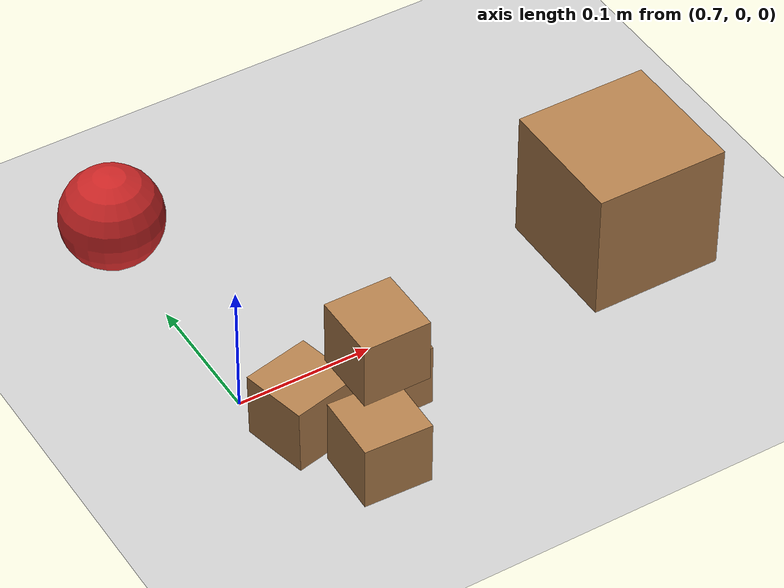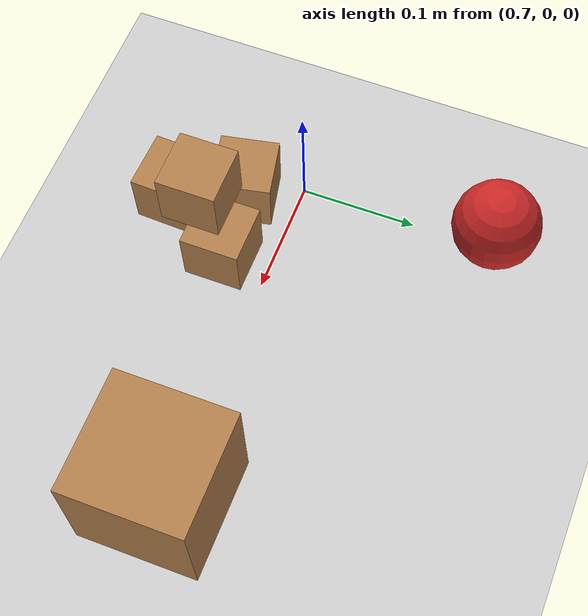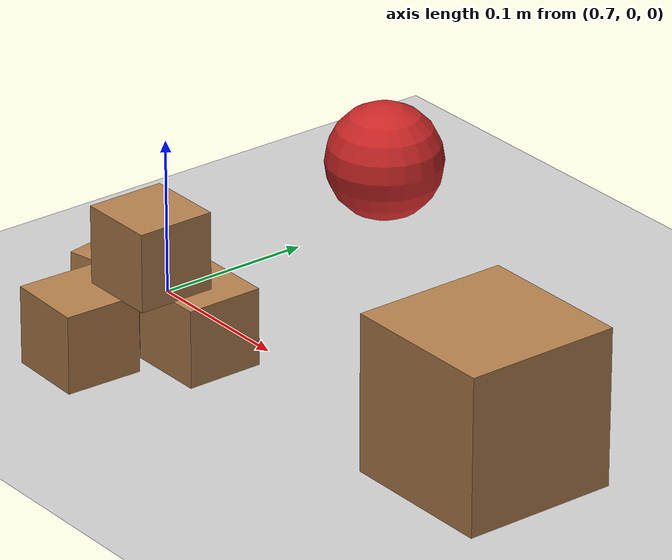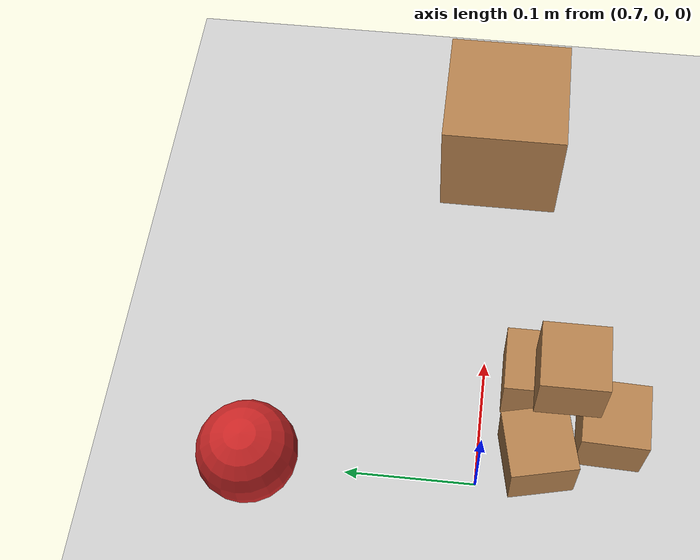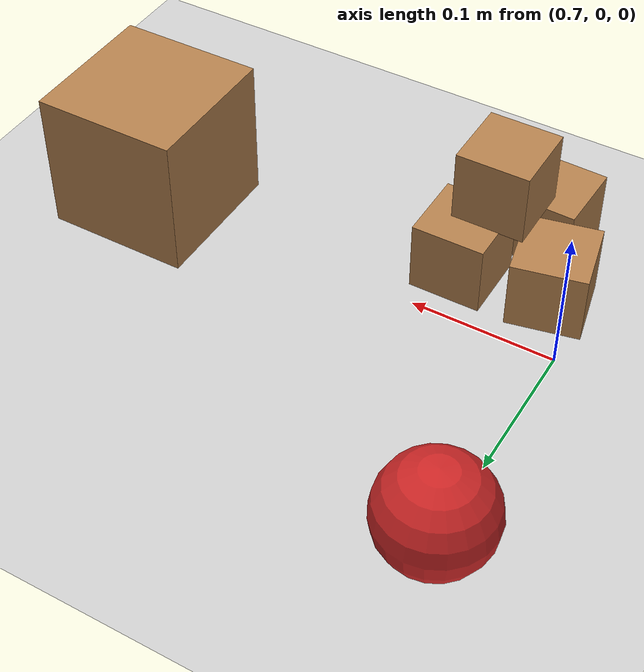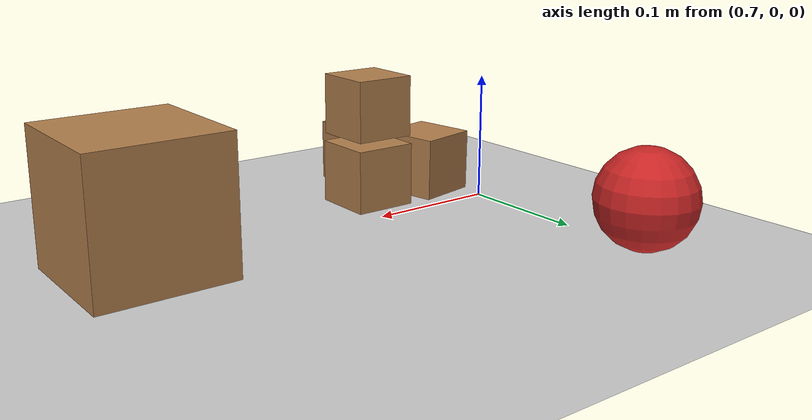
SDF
<sdf version="1.4">
 <world name="default">
  <light name="sun" type="directional">
   <pose>0 0 10 0 -0 0</pose>
   <diffuse>0.8 0.8 0.8 1</diffuse>
   <specular>0.2 0.2 0.2 1</specular>
   <attenuation>
    <range>1000</range>
    <constant>0.9</constant>
    <linear>0.01</linear>
    <quadratic>0.001</quadratic>
   </attenuation>
   <direction>-0.5 0.1 -0.9</direction>
  </light>
  <model name="ground_plane">
   <static>1</static>
   <link name="link">
    <collision name="collision">
     <geometry><plane><normal>0 0 1</normal><size>100 100</size></plane></geometry>
     <surface><friction><ode><mu>100</mu><mu2>50</mu2></ode></friction></surface>
    </collision>
    <visual name="visual">
     <cast_shadows>0</cast_shadows>
     <geometry><plane><normal>0 0 1</normal><size>100 100</size></plane></geometry>
     <material>
      <script><uri>file://media/materials/scripts/gazebo.material</uri><name>Gazebo/Grey</name></script>
     </material>
    </visual>
    <velocity_decay><linear>0</linear><angular>0</angular></velocity_decay>
   </link>
  </model>
  <physics type="ode">
   <max_step_size>0.001</max_step_size>
   <real_time_factor>1</real_time_factor>
   <real_time_update_rate>1000</real_time_update_rate>
   <gravity>0 0 -9.8</gravity>
  </physics>
  <scene><ambient>0.4 0.4 0.4 1</ambient><background>0.7 0.7 0.7 1</background><shadows>1</shadows></scene>
  <spherical_coordinates>
   <surface_model>EARTH_WGS84</surface_model>
   <latitude_deg>0</latitude_deg>
   <longitude_deg>0</longitude_deg>
   <elevation>0</elevation>
   <heading_deg>0</heading_deg>
  </spherical_coordinates>
  <model name="cricket_ball">
   <link name="link">
    <pose>0 0 0.0375 0 -0 0</pose>
    <inertial>
     <mass>0.1467</mass>
     <inertia>
      <ixx>8.25187e-05</ixx>
      <ixy>0</ixy>
      <ixz>0</ixz>
      <iyy>8.25187e-05</iyy>
      <iyz>0</iyz>
      <izz>8.25187e-05</izz>
     </inertia>
    </inertial>
    <collision name="collision"><geometry><sphere><radius>0.0375</radius></sphere></geometry></collision>
    <visual name="visual">
     <geometry><sphere><radius>0.0375</radius></sphere></geometry>
     <material>
      <script><uri>file://media/materials/scripts/gazebo.material</uri><name>Gazebo/Red</name></script>
     </material>
    </visual>
    <velocity_decay><linear>0</linear><angular>0.005</angular></velocity_decay>
   </link>
   <pose>0.697218 0.169136 -0 0 -0 0</pose>
   <static>0</static>
  </model>
  <model name="wood_cube_5cm">
   <link name="link">
    <pose>0 0 0.025 0 -0 0</pose>
    <inertial>
     <mass>0.0565</mass>
     <inertia>
      <ixx>2.35417e-05</ixx>
      <ixy>0</ixy>
      <ixz>0</ixz>
      <iyy>2.35417e-05</iyy>
      <iyz>0</iyz>
      <izz>2.35417e-05</izz>
     </inertia>
    </inertial>
    <collision name="collision">
     <geometry><box><size>0.05 0.05 0.05</size></box></geometry>
     <surface><contact><ode><max_vel>0.1</max_vel><min_depth>0.001</min_depth></ode></contact></surface>
    </collision>
    <visual name="visual">
     <geometry><box><size>0.05 0.05 0.05</size></box></geometry>
     <material>
      <script><uri>file://media/materials/scripts/gazebo.material</uri><name>Gazebo/Wood</name></script>
     </material>
    </visual>
    <velocity_decay><linear>0</linear><angular>0</angular></velocity_decay>
   </link>
   <pose>0.717396 -0.019396 0.02411 1.55355 6.3e-05 0.213139</pose>
   <static>0</static>
  </model>
  <model name="wood_cube_5cm_0">
   <link name="link">
    <pose>0 0 0.025 0 -0 0</pose>
    <inertial>
     <mass>0.0565</mass>
     <inertia>
      <ixx>2.35417e-05</ixx>
      <ixy>0</ixy>
      <ixz>0</ixz>
      <iyy>2.35417e-05</iyy>
      <iyz>0</iyz>
      <izz>2.35417e-05</izz>
     </inertia>
    </inertial>
    <collision name="collision">
     <geometry><box><size>0.05 0.05 0.05</size></box></geometry>
     <surface><contact><ode><max_vel>0.1</max_vel><min_depth>0.001</min_depth></ode></contact></surface>
    </collision>
    <visual name="visual">
     <geometry><box><size>0.05 0.05 0.05</size></box></geometry>
     <material>
      <script><uri>file://media/materials/scripts/gazebo.material</uri><name>Gazebo/Wood</name></script>
     </material>
    </visual>
    <velocity_decay><linear>0</linear><angular>0</angular></velocity_decay>
   </link>
   <pose>0.748325 -0.09923 -0.000104 -2e-05 0.003932 -0.034284</pose>
   <static>0</static>
  </model>
  <model name="wood_cube_5cm_1">
   <link name="link">
    <pose>0 0 0.025 0 -0 0</pose>
    <inertial>
     <mass>0.0565</mass>
     <inertia>
      <ixx>2.35417e-05</ixx>
      <ixy>0</ixy>
      <ixz>0</ixz>
      <iyy>2.35417e-05</iyy>
      <iyz>0</iyz>
      <izz>2.35417e-05</izz>
     </inertia>
    </inertial>
    <collision name="collision">
     <geometry><box><size>0.05 0.05 0.05</size></box></geometry>
     <surface><contact><ode><max_vel>0.1</max_vel><min_depth>0.001</min_depth></ode></contact></surface>
    </collision>
    <visual name="visual">
     <geometry><box><size>0.05 0.05 0.05</size></box></geometry>
     <material>
      <script><uri>file://media/materials/scripts/gazebo.material</uri><name>Gazebo/Wood</name></script>
     </material>
    </visual>
    <velocity_decay><linear>0</linear><angular>0</angular></velocity_decay>
   </link>
   <pose>0.785365 -0.03974 -7e-06 8e-06 4.5e-05 -5.16988e-26</pose>
   <static>0</static>
  </model>
  <model name="wood_cube_5cm_2">
   <link name="link">
    <pose>0 0 0.025 0 -0 0</pose>
    <inertial>
     <mass>0.0565</mass>
     <inertia>
      <ixx>2.35417e-05</ixx>
      <ixy>0</ixy>
      <ixz>0</ixz>
      <iyy>2.35417e-05</iyy>
      <iyz>0</iyz>
      <izz>2.35417e-05</izz>
     </inertia>
    </inertial>
    <collision name="collision">
     <geometry><box><size>0.05 0.05 0.05</size></box></geometry>
     <surface><contact><ode><max_vel>0.1</max_vel><min_depth>0.001</min_depth></ode></contact></surface>
    </collision>
    <visual name="visual">
     <geometry><box><size>0.05 0.05 0.05</size></box></geometry>
     <material>
      <script><uri>file://media/materials/scripts/gazebo.material</uri><name>Gazebo/Wood</name></script>
     </material>
    </visual>
    <velocity_decay><linear>0</linear><angular>0</angular></velocity_decay>
   </link>
   <pose>0.769057 -0.062285 0.049722 3.2e-05 2.6e-05 -9e-06</pose>
   <static>0</static>
  </model>
  <model name="wood_cube_10cm">
   <link name="link">
    <pose>0 0 0.05 0 -0 0</pose>
    <inertial>
     <mass>0.5167</mass>
     <inertia>
      <ixx>0.000861167</ixx>
      <ixy>0</ixy>
      <ixz>0</ixz>
      <iyy>0.000861167</iyy>
      <iyz>0</iyz>
      <izz>0.000861167</izz>
     </inertia>
    </inertial>
    <collision name="collision">
     <geometry><box><size>0.1 0.1 0.1</size></box></geometry>
     <surface><contact><ode><max_vel>0.1</max_vel><min_depth>0.001</min_depth></ode></contact></surface>
    </collision>
    <visual name="visual">
     <geometry><box><size>0.1 0.1 0.1</size></box></geometry>
     <material>
      <script><uri>file://media/materials/scripts/gazebo.material</uri><name>Gazebo/Wood</name></script>
     </material>
    </visual>
    <velocity_decay><linear>0</linear><angular>0</angular></velocity_decay>
   </link>
   <pose>1 -0 -7e-06 0 -0 0</pose>
   <static>0</static>
  </model>
 </world>
</sdf>
